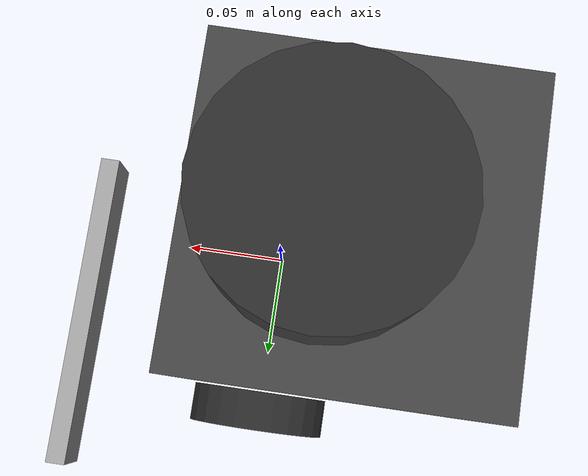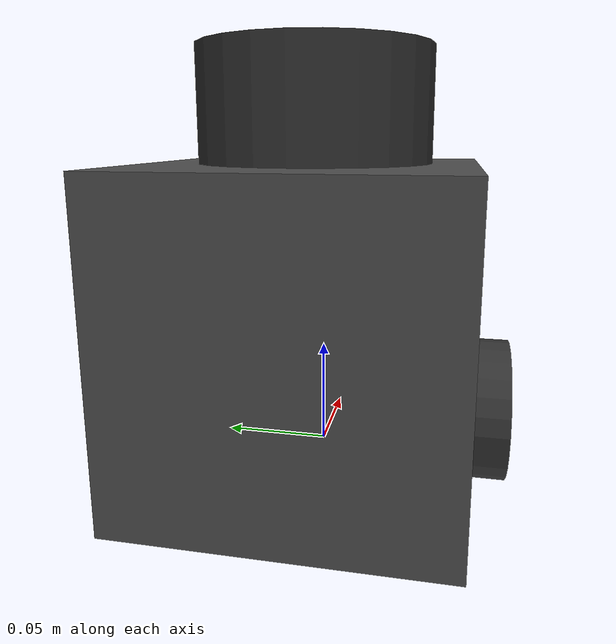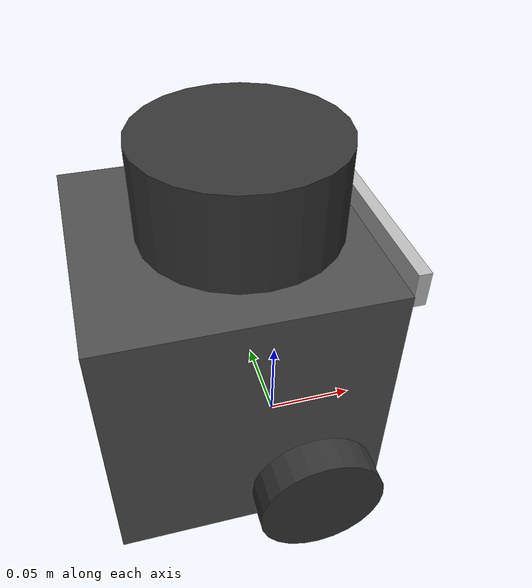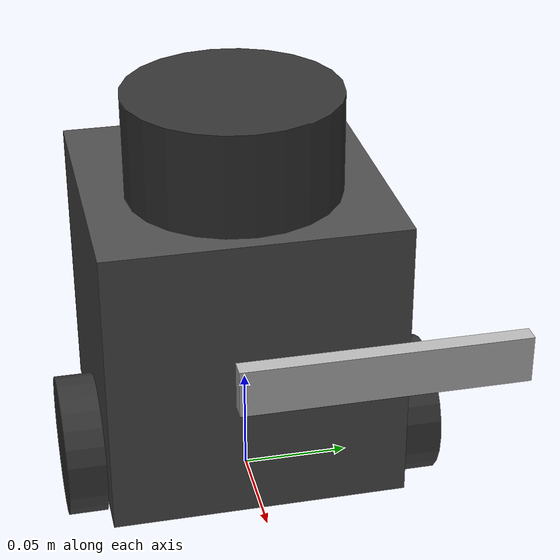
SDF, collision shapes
<?xml version="1.0" ?>
<sdf version="1.5">
  <model name="turtlebot3_burger">
    <pose>0.0 0.0 0.0 0.0 0.0 0.0</pose>

    <link name="base_footprint"/>

    <link name="base_link">

      <inertial>
        <pose>-0.032 0 0.070 0 0 0</pose>
        <inertia>
          <ixx>7.2397393e-01</ixx>
          <ixy>4.686399e-10</ixy>
          <ixz>-1.09525703e-08</ixz>
          <iyy>7.2397393e-01</iyy>
          <iyz>2.8582649e-09</iyz>
          <izz>6.53050163e-01</izz>
        </inertia>
        <mass>8.2573504e-01</mass>
      </inertial>

      <collision name="base_collision">
        <pose>-0.032 0 0.070 0 0 0</pose>
        <geometry>
          <box>
            <size>0.140 0.140 0.140</size>
          </box>
        </geometry>
      </collision>

      <visual name="base_visual">
        <pose>-0.032 0 0 0 0 0</pose>
        <geometry>
          <mesh>
            <uri>model://turtlebot3_common/meshes/bases/burger_base.stl</uri>
            <scale>0.001 0.001 0.001</scale>
          </mesh>
        </geometry>
        <material>
          <ambient>0.3 0.3 0.3 1.0</ambient>
          <diffuse>0.3 0.3 0.3 1.0</diffuse>
        </material>
      </visual>
    </link>

    <link name="imu_link">
      <sensor name="tb3_imu" type="imu">
        <always_on>true</always_on>
        <update_rate>200</update_rate>
        <imu>
          <angular_velocity>
            <x>
              <noise type="gaussian">
                <mean>0.0</mean>
                <stddev>2e-4</stddev>
              </noise>
            </x>
            <y>
              <noise type="gaussian">
                <mean>0.0</mean>
                <stddev>2e-4</stddev>
              </noise>
            </y>
            <z>
              <noise type="gaussian">
                <mean>0.0</mean>
                <stddev>2e-4</stddev>
              </noise>
            </z>
          </angular_velocity>
          <linear_acceleration>
            <x>
              <noise type="gaussian">
                <mean>0.0</mean>
                <stddev>1.7e-2</stddev>
              </noise>
            </x>
            <y>
              <noise type="gaussian">
                <mean>0.0</mean>
                <stddev>1.7e-2</stddev>
              </noise>
            </y>
            <z>
              <noise type="gaussian">
                <mean>0.0</mean>
                <stddev>1.7e-2</stddev>
              </noise>
            </z>
          </linear_acceleration>
        </imu>
        <plugin name="turtlebot3_imu" filename="libgazebo_ros_imu_sensor.so">
          <ros>
            <remapping>~/out:=imu</remapping>
          </ros>
        </plugin>
      </sensor>
    </link>

    <link name="base_scan">
      <inertial>
        <pose>-0.020 0 0.161 0 0 0</pose>
        <inertia>
          <ixx>0.001</ixx>
          <ixy>0.000</ixy>
          <ixz>0.000</ixz>
          <iyy>0.001</iyy>
          <iyz>0.000</iyz>
          <izz>0.001</izz>
        </inertia>
        <mass>0.114</mass>
      </inertial>

      <collision name="lidar_sensor_collision">
        <pose>-0.020 0 0.161 0 0 0</pose>
        <geometry>
          <cylinder>
            <radius>0.0508</radius>
            <length>0.055</length>
          </cylinder>
        </geometry>
      </collision>

      <visual name="lidar_sensor_visual">
        <pose>-0.032 0 0.171 0 0 0</pose>
        <geometry>
          <mesh>
            <uri>model://turtlebot3_common/meshes/sensors/lds.stl</uri>
            <scale>0.001 0.001 0.001</scale>
          </mesh>
        </geometry>
        <material>
          <ambient>0.2 0.2 0.2 1.0</ambient>
          <diffuse>0.2 0.2 0.2 1.0</diffuse>
        </material>
      </visual>

      <sensor name="hls_lfcd_lds" type="ray">
        <always_on>true</always_on>
        <visualize>true</visualize>
        <pose>-0.032 0 0.171 0 0 0</pose>
        <update_rate>5</update_rate>
        <ray>
          <scan>
            <horizontal>
              <samples>360</samples>
              <resolution>1.000000</resolution>
              <min_angle>0.000000</min_angle>
              <max_angle>6.280000</max_angle>
            </horizontal>
          </scan>
          <range>
            <min>0.120000</min>
            <max>6.0</max>
            <resolution>0.015000</resolution>
          </range>
          <noise>
            <type>gaussian</type>
            <mean>0.0</mean>
            <stddev>0.01</stddev>
          </noise>
        </ray>
        <plugin name="turtlebot3_laserscan" filename="libgazebo_ros_ray_sensor.so">
          <ros>
            <remapping>~/out:=scan</remapping>
          </ros>
          <output_type>sensor_msgs/LaserScan</output_type>
          <frame_name>base_scan</frame_name>
        </plugin>
      </sensor>
    </link>

    <link name="wheel_left_link">

      <inertial>
        <pose>0 0.08 0.023 -1.57 0 0</pose>
        <inertia>
          <ixx>1.8158194e-03</ixx>
          <ixy>-9.3392e-12</ixy>
          <ixz>1.04909e-11</ixz>
          <iyy>3.2922126e-03</iyy>
          <iyz>5.75694e-11</iyz>
          <izz>1.8158194e-03</izz>
        </inertia>
        <mass>2.8498940e-02</mass>
      </inertial>

      <collision name="wheel_left_collision">
        <pose>0 0.08 0.023 -1.57 0 0</pose>
        <geometry>
          <cylinder>
            <radius>0.033</radius>
            <length>0.018</length>
          </cylinder>
        </geometry>
        <surface>
          <!-- This friction pamareter don't contain reliable data!! -->
          <friction>
            <ode>
              <mu>100000.0</mu>
              <mu2>100000.0</mu2>
              <fdir1>0 0 0</fdir1>
              <slip1>0.0</slip1>
              <slip2>0.0</slip2>
            </ode>
          </friction>
          <contact>
            <ode>
              <soft_cfm>0</soft_cfm>
              <soft_erp>0.2</soft_erp>
              <kp>1e+5</kp>
              <kd>1</kd>
              <max_vel>0.01</max_vel>
              <min_depth>0.001</min_depth>
            </ode>
          </contact>
        </surface>
      </collision>

      <visual name="wheel_left_visual">
        <pose>0 0.08 0.023 0 0 0</pose>
        <geometry>
          <mesh>
            <uri>model://turtlebot3_common/meshes/wheels/left_tire.stl</uri>
            <scale>0.001 0.001 0.001</scale>
          </mesh>
        </geometry>
        <material>
          <ambient>0.2 0.2 0.2 1.0</ambient>
          <diffuse>0.2 0.2 0.2 1.0</diffuse>
        </material>
      </visual>
    </link>

    <link name="wheel_right_link">

      <inertial>
        <pose>0.0 -0.08 0.023 -1.57 0 0</pose>
        <inertia>
          <ixx>1.8158194e-03</ixx>
          <ixy>-9.3392e-12</ixy>
          <ixz>1.04909e-11</ixz>
          <iyy>3.2922126e-03</iyy>
          <iyz>5.75694e-11</iyz>
          <izz>1.8158194e-03</izz>
        </inertia>
        <mass>2.8498940e-02</mass>
      </inertial>

      <collision name="wheel_right_collision">
        <pose>0.0 -0.08 0.023 -1.57 0 0</pose>
        <geometry>
          <cylinder>
            <radius>0.033</radius>
            <length>0.018</length>
          </cylinder>
        </geometry>
        <surface>
          <!-- This friction pamareter don't contain reliable data!! -->
          <friction>
            <ode>
              <mu>100000.0</mu>
              <mu2>100000.0</mu2>
              <fdir1>0 0 0</fdir1>
              <slip1>0.0</slip1>
              <slip2>0.0</slip2>
            </ode>
          </friction>
          <contact>
            <ode>
              <soft_cfm>0</soft_cfm>
              <soft_erp>0.2</soft_erp>
              <kp>1e+5</kp>
              <kd>1</kd>
              <max_vel>0.01</max_vel>
              <min_depth>0.001</min_depth>
            </ode>
          </contact>
        </surface>
      </collision>

      <visual name="wheel_right_visual">
        <pose>0.0 -0.08 0.023 0 0 0</pose>
        <geometry>
          <mesh>
            <uri>model://turtlebot3_common/meshes/wheels/right_tire.stl</uri>
            <scale>0.001 0.001 0.001</scale>
          </mesh>
        </geometry>
        <material>
          <ambient>0.2 0.2 0.2 1.0</ambient>
          <diffuse>0.2 0.2 0.2 1.0</diffuse>
        </material>
      </visual>
    </link>

    <link name='caster_back_link'>
      <pose>-0.081 0 -0.004 -1.57 0 0</pose>
      <inertial>
        <mass>0.005</mass>
        <inertia>
          <ixx>0.001</ixx>
          <ixy>0.000</ixy>
          <ixz>0.000</ixz>
          <iyy>0.001</iyy>
          <iyz>0.000</iyz>
          <izz>0.001</izz>
        </inertia>
      </inertial>
      <collision name='collision'>
        <geometry>
          <sphere>
            <radius>0.005000</radius>
          </sphere>
        </geometry>
        <surface>
          <contact>
            <ode>
              <soft_cfm>0</soft_cfm>
              <soft_erp>0.2</soft_erp>
              <kp>1e+5</kp>
              <kd>1</kd>
              <max_vel>0.01</max_vel>
              <min_depth>0.001</min_depth>
            </ode>
          </contact>
        </surface>
      </collision>
    </link>

    <joint name="camera_joint" type="fixed">
      <parent>base_link</parent>
      <child>realsense_link</child>
      <pose>0.076 0.0 0.093 0 0 0</pose>
    </joint>

    <link name="realsense_link">
      <inertial>
        <pose>0.076 0.0 0.093 0 0 0</pose>
        <inertia>
          <ixx>0.001</ixx>
          <ixy>0.000</ixy>
          <ixz>0.000</ixz>
          <iyy>0.001</iyy>
          <iyz>0.000</iyz>
          <izz>0.001</izz>
        </inertia>
        <mass>0.035</mass>
      </inertial>

      <collision name="collision">
        <pose>0 0.047 0 0 0 0</pose>
        <geometry>
          <box>
            <size>0.008 0.130 0.022</size>
          </box>
        </geometry>
      </collision>
      <pose>0.076 0.0 0.093 0 0 0</pose>

      <sensor name="intel_realsense_r200_depth" type="depth">
        <always_on>1</always_on>
        <update_rate>30</update_rate>
        <pose>0.076 0.0 0.093 0 0 0</pose>
        <camera name="realsense_depth_camera">
          <image>
            <width>640</width>
            <height>480</height>
            <format>R8G8B8</format>
          </image>
          <clip>
            <near>0.02</near>
            <far>10</far>
          </clip>
        </camera>
	        <plugin name="intel_realsense_r200_depth_driver" filename="libgazebo_ros_camera.so">
            <ros>
            </ros>
            <camera_name>intel_realsense_r200_depth</camera_name>
            <frame_name>realsense_depth_frame</frame_name>
            <hack_baseline>0.07</hack_baseline>
            <min_depth>0.001</min_depth>
          </plugin>
      </sensor>

      <sensor name="intel_realsense_r200_rgb" type="camera">
        <always_on>true</always_on>
        <visualize>true</visualize>
        <update_rate>30</update_rate>
	      <pose>0.076 0.0 0.093 0 0 0</pose>
        <camera name="realsense_rgb_camera">
          <horizontal_fov>1.02974</horizontal_fov>
          <image>
            <width>640</width>
            <height>480</height>
            <format>R8G8B8</format>
          </image>
          <clip>
            <near>0.02</near>
            <far>300</far>
          </clip>
          <noise>
            <type>gaussian</type>
            <mean>0.0</mean>
            <stddev>0.007</stddev>
          </noise>
        </camera>
          <plugin name="intel_realsense_r200_rgb_driver" filename="libgazebo_ros_camera.so">
            <ros>
            </ros>
            <camera_name>intel_realsense_r200_rgb</camera_name>
            <frame_name>realsense_rgb_frame</frame_name>
            <hack_baseline>0.07</hack_baseline>
          </plugin>
      </sensor>
    </link>

    <joint name="base_joint" type="fixed">
      <parent>base_footprint</parent>
      <child>base_link</child>
      <pose>0.0 0.0 0.010 0 0 0</pose>
    </joint>

    <joint name="wheel_left_joint" type="revolute">
      <parent>base_link</parent>
      <child>wheel_left_link</child>
      <pose>0.0 0.08 0.023 -1.57 0 0</pose>
      <axis>
        <xyz>0 0 1</xyz>
      </axis>
    </joint>

    <joint name="wheel_right_joint" type="revolute">
      <parent>base_link</parent>
      <child>wheel_right_link</child>
      <pose>0.0 -0.08 0.023 -1.57 0 0</pose>
      <axis>
        <xyz>0 0 1</xyz>
      </axis>
    </joint>

    <joint name='caster_back_joint' type='ball'>
      <parent>base_link</parent>
      <child>caster_back_link</child>
    </joint>

    <joint name="imu_joint" type="fixed">
      <parent>base_link</parent>
      <child>imu_link</child>
      <pose>-0.032 0 0.068 0 0 0</pose>
      <axis>
        <xyz>0 0 1</xyz>
      </axis>
    </joint>

    <joint name="lidar_joint" type="fixed">
      <parent>base_link</parent>
      <child>base_scan</child>
      <pose>-0.032 0 0.171 0 0 0</pose>
      <axis>
        <xyz>0 0 1</xyz>
      </axis>
    </joint>

    <plugin name="turtlebot3_diff_drive" filename="libgazebo_ros_diff_drive.so">

      <ros>
      </ros>

      <update_rate>30</update_rate>

      <!-- wheels -->
      <left_joint>wheel_left_joint</left_joint>
      <right_joint>wheel_right_joint</right_joint>

      <!-- kinematics -->
      <wheel_separation>0.160</wheel_separation>
      <wheel_diameter>0.066</wheel_diameter>

      <!-- limits -->
      <max_wheel_torque>20</max_wheel_torque>
      <max_wheel_acceleration>1.0</max_wheel_acceleration>

      <command_topic>cmd_vel</command_topic>

      <!-- output -->
      <publish_odom>true</publish_odom>
      <publish_odom_tf>true</publish_odom_tf>
      <publish_wheel_tf>false</publish_wheel_tf>

      <odometry_topic>odom</odometry_topic>
      <odometry_frame>odom</odometry_frame>
      <robot_base_frame>base_footprint</robot_base_frame>

    </plugin>

    <plugin name="turtlebot3_joint_state" filename="libgazebo_ros_joint_state_publisher.so">
      <ros>
        <remapping>~/out:=joint_states</remapping>
      </ros>
      <update_rate>30</update_rate>
      <joint_name>wheel_left_joint</joint_name>
      <joint_name>wheel_right_joint</joint_name>
    </plugin>
  </model>
</sdf>
